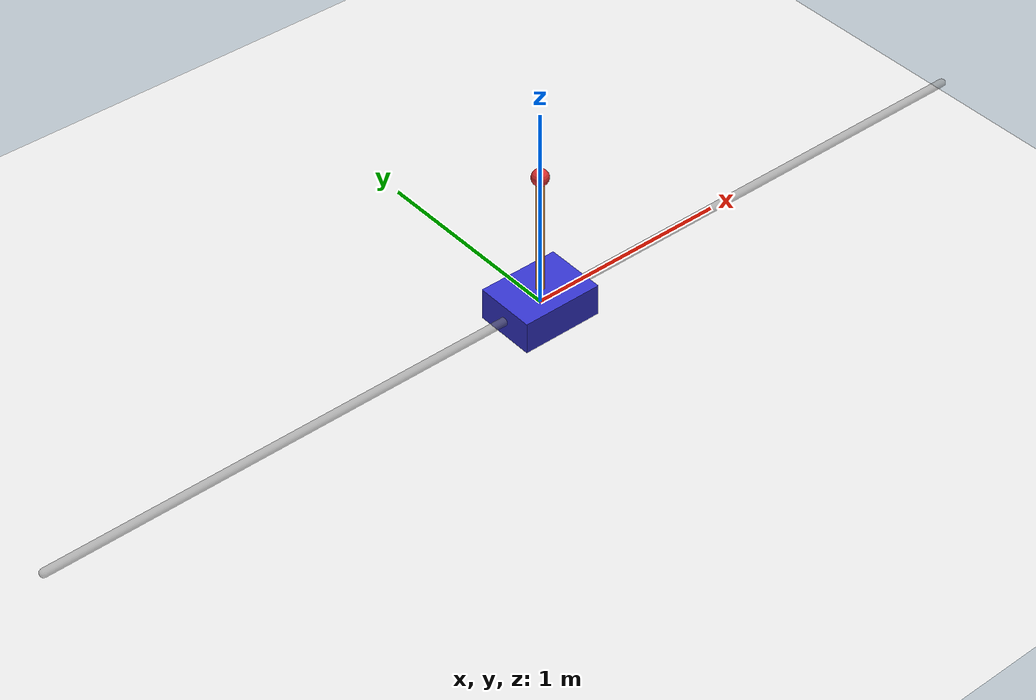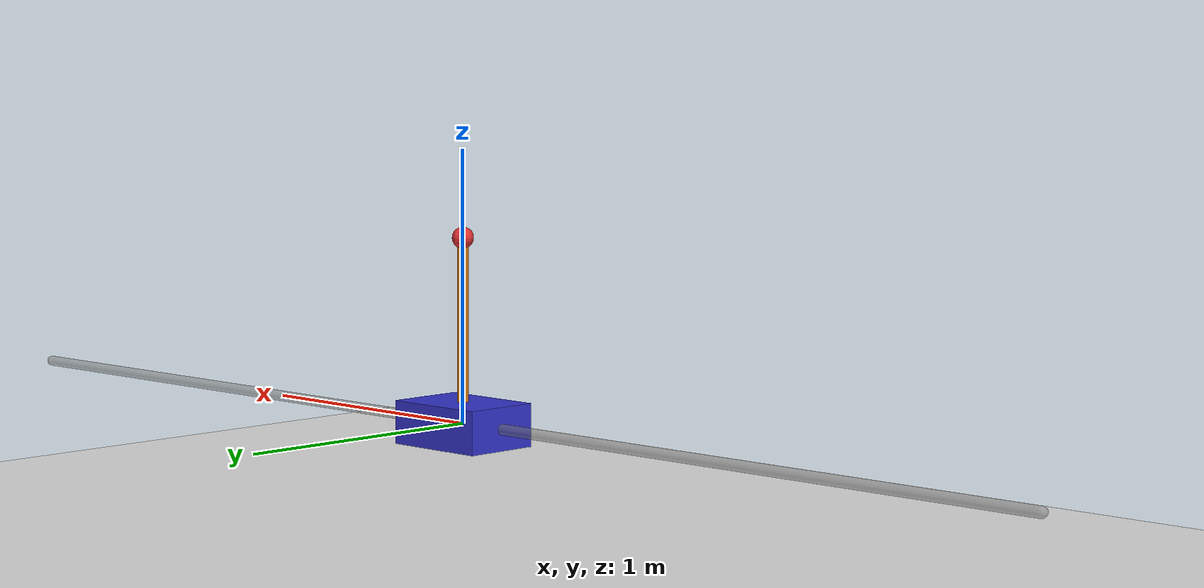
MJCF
<mujoco model="cart_pole">
  <compiler angle="radian" coordinate="local"/>

  <option gravity="0 0 -9.81" timestep="0.002">
    <flag contact="disable"/>
  </option>

  <default>
    <joint damping="0.05"/>
    <geom contype="0" conaffinity="0"/>  <!-- Disable all collisions -->
  </default>

  <visual>
    <headlight ambient="0.4 0.4 0.4"/>
  </visual>

  <worldbody>
    <light pos="0 -2 3" dir="0 0.3 -1" diffuse="1 1 1"/>

    <!-- Ground and rail -->
    <geom type="plane" size="3 3 0.01" rgba="0.9 0.9 0.9 1" pos="0 0 -0.5"/>
    <geom type="capsule" size="0.02" fromto="-2.5 0 0 2.5 0 0" rgba="0.5 0.5 0.5 0.5"/>

    <!-- Cart body -->
    <body name="cart" pos="0 0 0">
      <!-- Slide joint: cart moves along x-axis -->
      <joint name="slider" type="slide" axis="1 0 0" limited="true" range="-2.4 2.4"
             damping="0.5"/>

      <!-- Cart geometry -->
      <geom name="cart_geom" type="box" size="0.2 0.15 0.08" rgba="0.2 0.2 0.8 1" mass="1.0"/>

      <!-- Pole body (child of cart - moves with cart) -->
      <body name="pole" pos="0 0 0.08">
        <!-- Hinge joint: pole rotates relative to cart -->
        <joint name="hinge" type="hinge" axis="0 1 0" damping="0.01"/>

        <!-- Pole geometry -->
        <geom name="pole_geom" type="capsule" size="0.02" fromto="0 0 0 0 0 0.6"
              rgba="0.9 0.5 0.1 1" mass="0.1"/>

        <!-- Pole tip -->
        <geom name="tip" type="sphere" size="0.04" pos="0 0 0.6"
              rgba="0.9 0.2 0.2 1" mass="0.05"/>
      </body>
    </body>
  </worldbody>

  <actuator>
    <!-- Only the cart is actuated - this makes it an under-actuated system -->
    <motor name="slide_force" joint="slider" gear="10" ctrllimited="true" ctrlrange="-1 1"/>
  </actuator>

  <sensor>
    <jointpos name="cart_pos" joint="slider"/>
    <jointvel name="cart_vel" joint="slider"/>
    <jointpos name="pole_angle" joint="hinge"/>
    <jointvel name="pole_angular_vel" joint="hinge"/>
  </sensor>
</mujoco>
